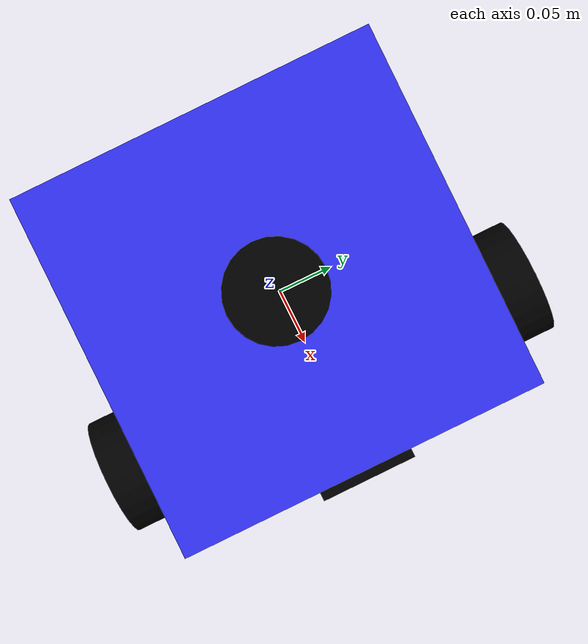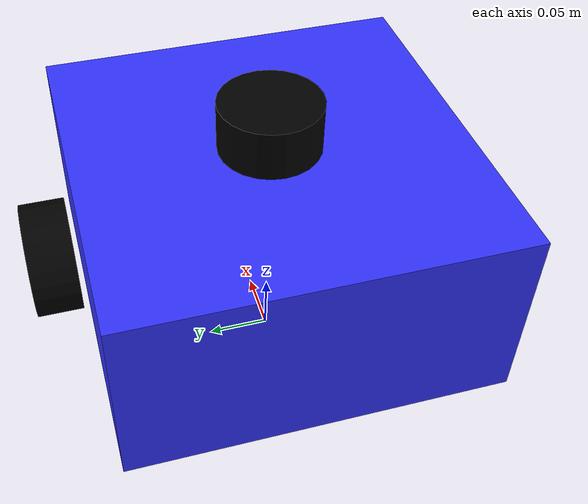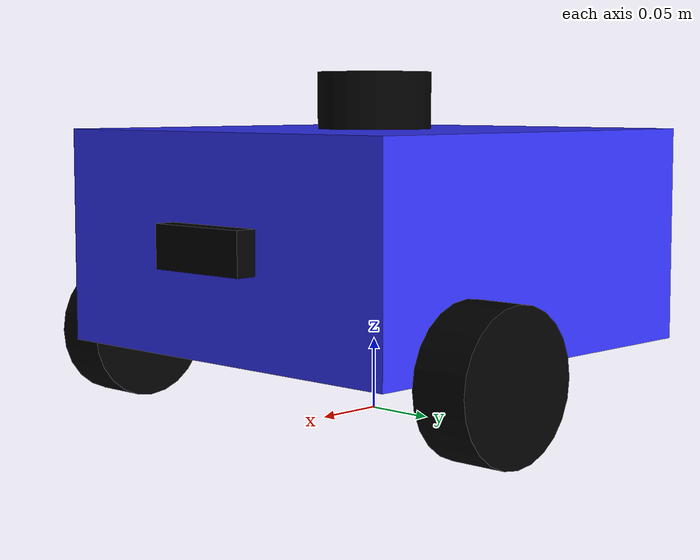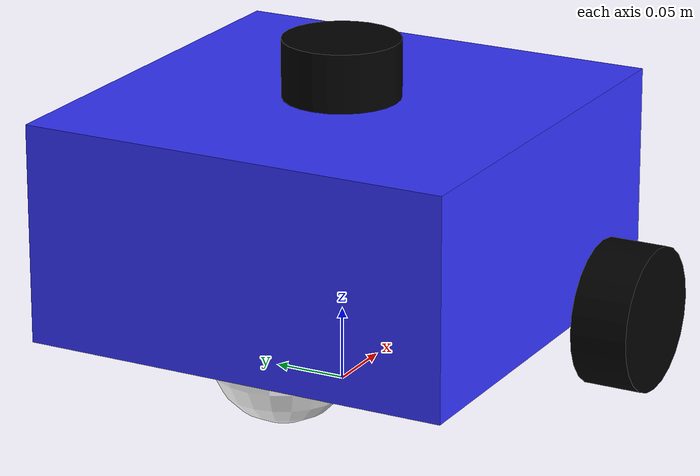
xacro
<?xml version="1.0"?>
<robot xmlns:xacro="http://www.ros.org/wiki/xacro" name="dif_bot">

    <!-- Propiedades del Robot -->
    <xacro:property name="chassis_length" value="0.3"/>
    <xacro:property name="chassis_width" value="0.3"/>
    <xacro:property name="chassis_height" value="0.15"/>
    <xacro:property name="chassis_mass" value="1.0"/>
    <xacro:property name="chassis_z_offset" value="0.075"/>

    <xacro:property name="wheel_radius" value="0.05"/>
    <xacro:property name="wheel_length" value="0.04"/>
    <xacro:property name="wheel_mass" value="0.1"/>
    <xacro:property name="wheel_offset_x" value="0.08"/>
    <xacro:property name="wheel_offset_y" value="0.175"/>

    <xacro:property name="caster_wheel_radius" value="0.05"/>
    <xacro:property name="caster_wheel_mass" value="0.05"/>
    <xacro:property name="caster_wheel_offset_x" value="-0.08"/>

    <!-- Materiales -->
    <material name="white">
        <color rgba="1 1 1 1"/>
    </material>
    <material name="blue">
        <color rgba="0.2 0.2 1 1"/>
    </material>
    <material name="black">
        <color rgba="0 0 0 1"/>
    </material>

    <!-- Macros de Inercia -->
    <xacro:macro name="inertial_box" params="mass x y z *origin">
        <inertial>
            <xacro:insert_block name="origin"/>
            <mass value="${mass}" />
            <inertia ixx="${(1.0/12.0) * mass * (y*y + z*z)}" ixy="0.0" ixz="0.0"
                     iyy="${(1.0/12.0) * mass * (x*x + z*z)}" iyz="0.0"
                     izz="${(1.0/12.0) * mass * (x*x + y*y)}" />
        </inertial>
    </xacro:macro>

    <xacro:macro name="inertial_cylinder" params="mass length radius *origin">
        <inertial>
            <xacro:insert_block name="origin"/>
            <mass value="${mass}" />
            <inertia ixx="${(1.0/12.0) * mass * (3.0*radius*radius + length*length)}" ixy="0.0" ixz="0.0"
                     iyy="${(1.0/12.0) * mass * (3.0*radius*radius + length*length)}" iyz="0.0"
                     izz="${(1.0/2.0) * mass * (radius*radius)}" />
        </inertial>
    </xacro:macro>

    <xacro:macro name="inertial_sphere" params="mass radius *origin">
        <inertial>
            <xacro:insert_block name="origin"/>
            <mass value="${mass}" />
            <inertia ixx="${(2.0/5.0) * mass * (radius*radius)}" ixy="0.0" ixz="0.0"
                     iyy="${(2.0/5.0) * mass * (radius*radius)}" iyz="0.0"
                     izz="${(2.0/5.0) * mass * (radius*radius)}" />
        </inertial>
    </xacro:macro>

    <!-- Base Footprint -->
    <link name="base_footprint"/>

    <joint name="base_footprint_joint" type="fixed">
        <parent link="base_footprint"/>
        <child link="base_link"/>
        <origin xyz="0 0 0.05" rpy="0 0 0"/>
    </joint>

    <!-- Base Link -->
    <link name="base_link">
        <visual>
            <origin xyz="0 0 ${chassis_z_offset}"/>
            <geometry>
                <box size="${chassis_length} ${chassis_width} ${chassis_height}"/>
            </geometry>
            <material name="blue"/>
        </visual>
        <collision>
            <origin xyz="0 0 ${chassis_z_offset}"/>
            <geometry>
                <box size="${chassis_length} ${chassis_width} ${chassis_height}"/>
            </geometry>
        </collision>
        <xacro:inertial_box mass="${chassis_mass}" x="${chassis_length}" y="${chassis_width}" z="${chassis_height}">
            <origin xyz="0 0 ${chassis_z_offset}" rpy="0 0 0"/>
        </xacro:inertial_box>
    </link>

    <!-- Macro para Ruedas Motrices -->
    <xacro:macro name="wheel" params="prefix side_reflect">
        <link name="${prefix}_wheel">
            <visual>
                <geometry>
                    <cylinder radius="${wheel_radius}" length="${wheel_length}"/>
                </geometry>
                <material name="black"/>
            </visual>
            <collision>
                <geometry>
                    <cylinder radius="${wheel_radius}" length="${wheel_length}"/>
                </geometry>
            </collision>
            <xacro:inertial_cylinder mass="${wheel_mass}" length="${wheel_length}" radius="${wheel_radius}">
                <origin xyz="0 0 0" rpy="0 0 0"/>
            </xacro:inertial_cylinder>
        </link>

        <joint name="${prefix}_wheel_joint" type="continuous">
            <parent link="base_link"/>
            <child link="${prefix}_wheel"/>
            <origin xyz="${wheel_offset_x} ${side_reflect * wheel_offset_y} 0" rpy="-1.57079632679 0 0"/>
            <axis xyz="0 0 1"/>
        </joint>
    </xacro:macro>

    <xacro:wheel prefix="left" side_reflect="1" />
    <xacro:wheel prefix="right" side_reflect="-1" />

    <!-- Rueda Caster -->
    <link name="caster_wheel">
        <visual>
            <geometry>
                <sphere radius="${caster_wheel_radius}"/>
            </geometry>
            <material name="white"/>
        </visual>
        <collision>
            <geometry>
                <sphere radius="${caster_wheel_radius}"/>
            </geometry>
        </collision>
        <xacro:inertial_sphere mass="${caster_wheel_mass}" radius="${caster_wheel_radius}">
            <origin xyz="0 0 0" rpy="0 0 0"/>
        </xacro:inertial_sphere>
    </link>

    <joint name="caster_wheel_joint" type="fixed">
        <parent link="base_link"/>
        <child link="caster_wheel"/>
        <origin xyz="${caster_wheel_offset_x} 0 0"/>
    </joint>
    <!-- Incluir Sensores -->
    <xacro:include filename="sensors.xacro" />

</robot>

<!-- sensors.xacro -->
<robot xmlns:xacro="http://www.ros.org/wiki/xacro">

    <!-- CÁMARA -->
    <link name="camera_link">
        <visual>
            <geometry>
                <box size="0.03 0.08 0.03"/>
            </geometry>
            <material name="black"/>
        </visual>
        <collision>
            <geometry>
                <box size="0.03 0.08 0.03"/>
            </geometry>
        </collision>
        <xacro:inertial_box mass="0.05" x="0.03" y="0.08" z="0.03">
            <origin xyz="0 0 0" rpy="0 0 0"/>
        </xacro:inertial_box>
    </link>

    <joint name="camera_joint" type="fixed">
        <parent link="base_link"/>
        <child link="camera_link"/>
        <origin xyz="0.15 0 0.075" rpy="0 0 0"/>
    </joint>

    <!-- LIDAR (Laser Scanner) -->
    <link name="laser_frame">
        <visual>
            <geometry>
                <cylinder radius="0.04" length="0.04"/>
            </geometry>
            <material name="black"/>
        </visual>
        <collision>
            <geometry>
                <cylinder radius="0.04" length="0.04"/>
            </geometry>
        </collision>
        <xacro:inertial_cylinder mass="0.1" length="0.04" radius="0.04">
            <origin xyz="0 0 0" rpy="0 0 0"/>
        </xacro:inertial_cylinder>
    </link>

    <joint name="laser_joint" type="fixed">
        <parent link="base_link"/>
        <child link="laser_frame"/>
        <origin xyz="0 0 0.17" rpy="0 0 0"/>
    </joint>

    <!-- IMU -->
    <link name="imu_link">
        <visual>
            <geometry>
                <box size="0.02 0.02 0.01"/>
            </geometry>
            <material name="white"/>
        </visual>
        <collision>
            <geometry>
                <box size="0.02 0.02 0.01"/>
            </geometry>
        </collision>
        <xacro:inertial_box mass="0.01" x="0.02" y="0.02" z="0.01">
            <origin xyz="0 0 0" rpy="0 0 0"/>
        </xacro:inertial_box>
    </link>

    <joint name="imu_joint" type="fixed">
        <parent link="base_link"/>
        <child link="imu_link"/>
        <origin xyz="0 0 0.15" rpy="0 0 0"/>
    </joint>

</robot>
